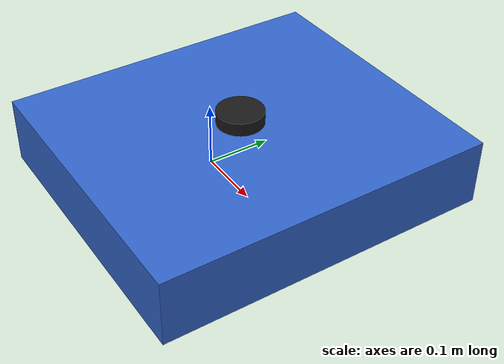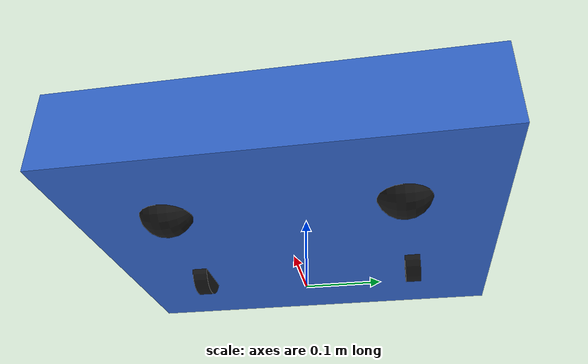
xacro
<?xml version="1.0"?>
<robot name="diff_bot" xmlns:xacro="http://www.ros.org/wiki/xacro">

  <!--  Parameters  — edit to match your robot                           -->
  <xacro:property name="base_length"      value="0.440"/>
  <xacro:property name="base_width"       value="0.500"/>
  <xacro:property name="base_height"      value="0.10"/>
  <xacro:property name="wheel_radius"     value="0.033"/>
  <xacro:property name="wheel_thickness"  value="0.020"/>
  <xacro:property name="wheel_separation" value="0.290"/>

  <!-- Sensor offsets -->
  <xacro:property name="lidar_height"     value="0.01"/>  <!-- LiDAR body half-height -->
  <xacro:property name="imu_size"         value="0.025"/>  <!-- IMU box side length -->

  <xacro:property name="tof_x_offset"       value="0.185"/>  <!-- forward from base_link (m) -->
  <xacro:property name="tof_y_offset"       value="0.17"/>  <!-- half sensor separation (m) -->
  <xacro:property name="tof_z_offset"       value="0.05"/>  <!-- height above base plate (m) -->
  <xacro:property name="tof_crossover_dist" value="0.40"/>  <!-- desired ray crossover (m) -->
  <!-- toe_in_rad derived from geometry — no need to edit manually -->
  <xacro:property name="tof_toe_in_rad"
    value="${atan2(tof_y_offset, tof_crossover_dist)}"/>

  <!--  Links & Joints                                                    -->
  <link name="base_footprint"/>

  <joint name="base_joint" type="fixed">
    <parent link="base_footprint"/>
    <child  link="base_link"/>
    <origin xyz="0.0825 0 ${wheel_radius + 0.04}" rpy="0 0 0"/>
  </joint>

  <link name="base_link">
    <visual>
      <geometry><box size="${base_length} ${base_width} ${base_height}"/></geometry>
      <material name="blue"><color rgba="0.2 0.4 0.8 0.9"/></material>
    </visual>
    <collision>
      <geometry><box size="${base_length} ${base_width} ${base_height}"/></geometry>
    </collision>
    <inertial>
      <mass value="1.0"/>
      <inertia ixx="0.005" ixy="0" ixz="0" iyy="0.005" iyz="0" izz="0.005"/>
    </inertial>
  </link>

  <xacro:macro name="wheel" params="name y_reflect">
    <link name="${name}">
      <visual>
        <geometry><cylinder radius="${wheel_radius}" length="${wheel_thickness}"/></geometry>
        <origin xyz="0 0 0" rpy="${pi/2} 0 0"/>
        <material name="black"><color rgba="0.1 0.1 0.1 1.0"/></material>
      </visual>
      <collision>
        <geometry><cylinder radius="${wheel_radius}" length="${wheel_thickness}"/></geometry>
        <origin xyz="0 0 0" rpy="${pi/2} 0 0"/>
      </collision>
      <inertial>
        <mass value="0.2"/>
        <inertia ixx="0.0001" ixy="0" ixz="0" iyy="0.0001" iyz="0" izz="0.0002"/>
      </inertial>
    </link>
    <joint name="${name}_joint" type="continuous">
      <parent link="base_link"/>
      <child  link="${name}"/>
      <origin xyz="-0.0825 ${y_reflect * wheel_separation / 2} -0.04" rpy="0 0 0"/>
      <axis xyz="0 1 0"/>
    </joint>
  </xacro:macro>

  <xacro:wheel name="left_wheel"  y_reflect=" 1"/>
  <xacro:wheel name="right_wheel" y_reflect="-1"/>

  <!-- Caster -->
  <xacro:macro name="caster_wheel" params="name y_reflect">
    <link name="${name}">
      <visual>
        <geometry><sphere radius="${wheel_radius}"/></geometry>
        <origin xyz="0 0 0" rpy="${pi/2} 0 0"/>
        <material name="black"><color rgba="0.1 0.1 0.1 1.0"/></material>
      </visual>
      <collision>
        <geometry><sphere radius="${wheel_radius}"/></geometry>
        <origin xyz="0 0 0" rpy="${pi/2} 0 0"/>
      </collision>
      <inertial>
        <mass value="0.2"/>
        <inertia ixx="0.0001" ixy="0" ixz="0" iyy="0.0001" iyz="0" izz="0.0002"/>
      </inertial>
    </link>
    <joint name="${name}_joint" type="fixed">
      <parent link="base_link"/>
      <child  link="${name}"/>
      <origin xyz="0.100 ${y_reflect * 0.1375} -0.04" rpy="0 0 0"/>
      <axis xyz="0 1 0"/>
    </joint>
  </xacro:macro>

  <xacro:caster_wheel name="left_caster_wheel"  y_reflect=" 1"/>
  <xacro:caster_wheel name="right_caster_wheel" y_reflect="-1"/>

  <!--  IMU                                                               -->
  <!--  Centered on top of base. Frame aligned with base_link (no rpy). -->
  <!--  Edit xyz to match your physical mounting position.               -->
  <link name="imu_link">
    <visual>
      <geometry><box size="${imu_size} ${imu_size} 0.010"/></geometry>
      <material name="green"><color rgba="0.0 0.8 0.2 1.0"/></material>
    </visual>
    <collision>
      <geometry><box size="${imu_size} ${imu_size} 0.010"/></geometry>
    </collision>
    <inertial>
      <mass value="0.010"/>
      <inertia ixx="0.000001" ixy="0" ixz="0" iyy="0.000001" iyz="0" izz="0.000001"/>
    </inertial>
  </link>
  <joint name="imu_joint" type="fixed">
    <parent link="base_link"/>
    <child  link="imu_link"/>
    <!-- Sits on top of the base, centered -->
    <origin xyz="0 0 0.005" rpy="0 0 0"/>
  </joint>

  <!--  LiDAR                                                             -->
  <!--  Mounted forward-center on top of base. Adjust xyz as needed.    -->
  <!--  The laser scan plane is at z=0 of lidar_link by convention.     -->
  <link name="lidar_link">
    <visual>
      <geometry><cylinder radius="0.035" length="${lidar_height * 2}"/></geometry>
      <material name="black"><color rgba="0.1 0.1 0.1 1.0"/></material>
    </visual>
    <collision>
      <geometry><cylinder radius="0.035" length="${lidar_height * 2}"/></geometry>
    </collision>
    <inertial>
      <mass value="0.150"/>
      <inertia ixx="0.0001" ixy="0" ixz="0" iyy="0.0001" iyz="0" izz="0.0001"/>
    </inertial>
  </link>
  <joint name="lidar_joint" type="fixed">
    <parent link="base_link"/>
    <child  link="lidar_link"/>
    <!-- Forward-center, scan plane level with top of lidar body -->
    <origin xyz="0 0 ${base_height/2 + lidar_height + 0.0}" rpy="0 0 ${pi}"/>
  </joint>

  ════════════════════════════════════════════════════════════════════ -->
  <!--  ros2_control hardware interface block                             -->
  <ros2_control name="esp32_hardware" type="system">
    <hardware>
      <plugin>esp32_hardware/Esp32HardwareInterface</plugin>
      <param name="serial_port">/dev/ESP32_hub.3</param>
      <param name="baud_rate">921600</param>
    </hardware>

    <joint name="left_wheel_joint">
      <command_interface name="velocity">
        <param name="min">-9.0</param>
        <param name="max"> 9.0</param>
      </command_interface>
      <state_interface name="position"/>
      <state_interface name="velocity"/>
    </joint>

    <joint name="right_wheel_joint">
      <command_interface name="velocity">
        <param name="min">-9.0</param>
        <param name="max"> 9.0</param>
      </command_interface>
      <state_interface name="position"/>
      <state_interface name="velocity"/>
    </joint>
  </ros2_control>

</robot>
